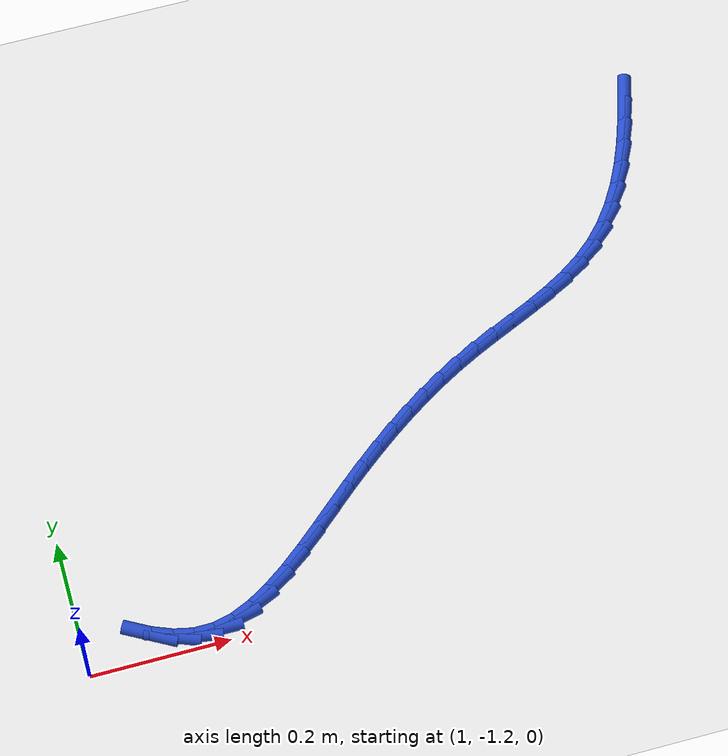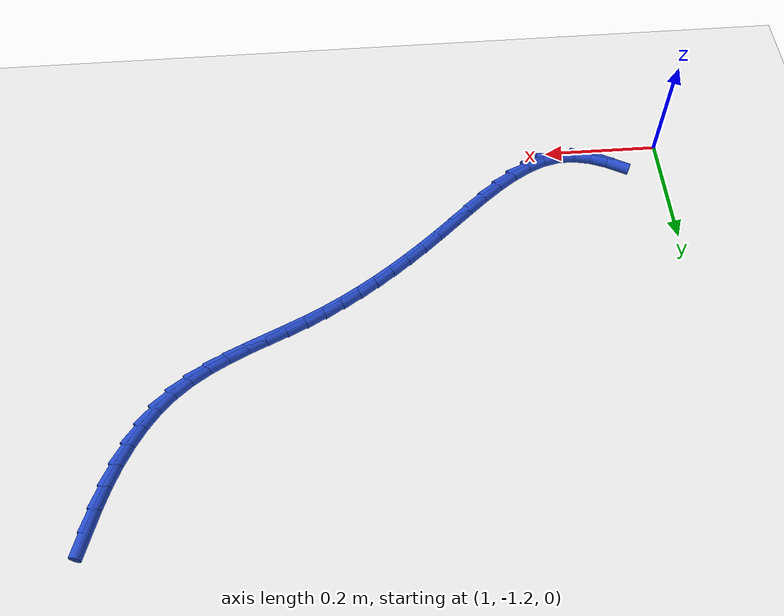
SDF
<sdf version="1.6">
 <world name="default">
  <model name="ground_plane">
   <static>1</static>
   <link name="link">
    <collision name="collision">
     <geometry><plane><normal>0 0 1</normal><size>100 100</size></plane></geometry>
     <surface><friction><ode><mu>100</mu><mu2>50</mu2></ode></friction></surface>
    </collision>
    <visual name="visual">
     <cast_shadows>0</cast_shadows>
     <geometry><plane><normal>0 0 1</normal><size>100 100</size></plane></geometry>
     <material>
      <script><uri>file://media/materials/scripts/gazebo.material</uri><name>Gazebo/WhiteGlow</name></script>
     </material>
    </visual>
   </link>
  </model>
  <model name="line">
   <link name="link_117">
    <pose>1.9673540502915772 -0.5448533219753612 0.01 0 1.57 1.2707819815663457</pose>
    <collision name="collision">
     <geometry><cylinder><radius>0.01</radius><length>0.08</length></cylinder></geometry>
    </collision>
    <visual name="visual">
     <material>
      <script><name>Gazebo/Blue</name><uri>file://media/materials/scripts/gazebo.material</uri></script>
     </material>
     <geometry><cylinder><radius>0.01</radius><length>0.08</length></cylinder></geometry>
    </visual>
   </link>
   <link name="link_118">
    <pose>1.9566328821440122 -0.5795101829973942 0.01 0 1.57 1.2243836448199263</pose>
    <collision name="collision">
     <geometry><cylinder><radius>0.01</radius><length>0.08</length></cylinder></geometry>
    </collision>
    <visual name="visual">
     <material>
      <script><name>Gazebo/Blue</name><uri>file://media/materials/scripts/gazebo.material</uri></script>
     </material>
     <geometry><cylinder><radius>0.01</radius><length>0.08</length></cylinder></geometry>
    </visual>
   </link>
   <link name="link_119">
    <pose>1.9444348681800288 -0.6133026458098839 0.01 0 1.57 1.1676205584317096</pose>
    <collision name="collision">
     <geometry><cylinder><radius>0.01</radius><length>0.08</length></cylinder></geometry>
    </collision>
    <visual name="visual">
     <material>
      <script><name>Gazebo/Blue</name><uri>file://media/materials/scripts/gazebo.material</uri></script>
     </material>
     <geometry><cylinder><radius>0.01</radius><length>0.08</length></cylinder></geometry>
    </visual>
   </link>
   <link name="link_120">
    <pose>1.9305344171575887 -0.6458913717248348 0.01 0 1.57 1.0993035239917834</pose>
    <collision name="collision">
     <geometry><cylinder><radius>0.01</radius><length>0.08</length></cylinder></geometry>
    </collision>
    <visual name="visual">
     <material>
      <script><name>Gazebo/Blue</name><uri>file://media/materials/scripts/gazebo.material</uri></script>
     </material>
     <geometry><cylinder><radius>0.01</radius><length>0.08</length></cylinder></geometry>
    </visual>
   </link>
   <link name="link_121">
    <pose>1.914705937834654 -0.6769370220542514 0.01 0 1.57 1.0182590969712926</pose>
    <collision name="collision">
     <geometry><cylinder><radius>0.01</radius><length>0.08</length></cylinder></geometry>
    </collision>
    <visual name="visual">
     <material>
      <script><name>Gazebo/Blue</name><uri>file://media/materials/scripts/gazebo.material</uri></script>
     </material>
     <geometry><cylinder><radius>0.01</radius><length>0.08</length></cylinder></geometry>
    </visual>
   </link>
   <link name="link_122">
    <pose>1.8967238389691847 -0.7061002581101379 0.01 0 1.57 0.9236186587488563</pose>
    <collision name="collision">
     <geometry><cylinder><radius>0.01</radius><length>0.08</length></cylinder></geometry>
    </collision>
    <visual name="visual">
     <material>
      <script><name>Gazebo/Blue</name><uri>file://media/materials/scripts/gazebo.material</uri></script>
     </material>
     <geometry><cylinder><radius>0.01</radius><length>0.08</length></cylinder></geometry>
    </visual>
   </link>
   <link name="link_123">
    <pose>1.8763625293191437 -0.7330417412044989 0.01 0 1.57 0.8152601228163411</pose>
    <collision name="collision">
     <geometry><cylinder><radius>0.01</radius><length>0.08</length></cylinder></geometry>
    </collision>
    <visual name="visual">
     <material>
      <script><name>Gazebo/Blue</name><uri>file://media/materials/scripts/gazebo.material</uri></script>
     </material>
     <geometry><cylinder><radius>0.01</radius><length>0.08</length></cylinder></geometry>
    </visual>
   </link>
   <link name="link_124">
    <pose>1.8533964176424917 -0.7574221326493388 0.01 0 1.57 0.6959621200831863</pose>
    <collision name="collision">
     <geometry><cylinder><radius>0.01</radius><length>0.08</length></cylinder></geometry>
    </collision>
    <visual name="visual">
     <material>
      <script><name>Gazebo/Blue</name><uri>file://media/materials/scripts/gazebo.material</uri></script>
     </material>
     <geometry><cylinder><radius>0.01</radius><length>0.08</length></cylinder></geometry>
    </visual>
   </link>
   <link name="link_125">
    <pose>1.827636068884223 -0.7789425646608954 0.01 0 1.57 0.5889126320006592</pose>
    <collision name="collision">
     <geometry><cylinder><radius>0.01</radius><length>0.08</length></cylinder></geometry>
    </collision>
    <visual name="visual">
     <material>
      <script><name>Gazebo/Blue</name><uri>file://media/materials/scripts/gazebo.material</uri></script>
     </material>
     <geometry><cylinder><radius>0.01</radius><length>0.08</length></cylinder></geometry>
    </visual>
   </link>
   <link name="link_126">
    <pose>1.7993614007290035 -0.7978295326460035 0.01 0 1.57 0.509112200747806</pose>
    <collision name="collision">
     <geometry><cylinder><radius>0.01</radius><length>0.08</length></cylinder></geometry>
    </collision>
    <visual name="visual">
     <material>
      <script><name>Gazebo/Blue</name><uri>file://media/materials/scripts/gazebo.material</uri></script>
     </material>
     <geometry><cylinder><radius>0.01</radius><length>0.08</length></cylinder></geometry>
    </visual>
   </link>
   <link name="link_127">
    <pose>1.7691801771771736 -0.8146765020361029 0.01 0 1.57 0.4552575044711966</pose>
    <collision name="collision">
     <geometry><cylinder><radius>0.01</radius><length>0.08</length></cylinder></geometry>
    </collision>
    <visual name="visual">
     <material>
      <script><name>Gazebo/Blue</name><uri>file://media/materials/scripts/gazebo.material</uri></script>
     </material>
     <geometry><cylinder><radius>0.01</radius><length>0.08</length></cylinder></geometry>
    </visual>
   </link>
   <link name="link_128">
    <pose>1.7377068699587108 -0.8300844464626447 0.01 0 1.57 0.4254885467728281</pose>
    <collision name="collision">
     <geometry><cylinder><radius>0.01</radius><length>0.08</length></cylinder></geometry>
    </collision>
    <visual name="visual">
     <material>
      <script><name>Gazebo/Blue</name><uri>file://media/materials/scripts/gazebo.material</uri></script>
     </material>
     <geometry><cylinder><radius>0.01</radius><length>0.08</length></cylinder></geometry>
    </visual>
   </link>
   <link name="link_129">
    <pose>1.705555950803594 -0.8446543395570794 0.01 0 1.57 0.41862489967751054</pose>
    <collision name="collision">
     <geometry><cylinder><radius>0.01</radius><length>0.08</length></cylinder></geometry>
    </collision>
    <visual name="visual">
     <material>
      <script><name>Gazebo/Blue</name><uri>file://media/materials/scripts/gazebo.material</uri></script>
     </material>
     <geometry><cylinder><radius>0.01</radius><length>0.08</length></cylinder></geometry>
    </visual>
   </link>
   <link name="link_130">
    <pose>1.6733418914418021 -0.8589871549508585 0.01 0 1.57 0.4345704161032283</pose>
    <collision name="collision">
     <geometry><cylinder><radius>0.01</radius><length>0.08</length></cylinder></geometry>
    </collision>
    <visual name="visual">
     <material>
      <script><name>Gazebo/Blue</name><uri>file://media/materials/scripts/gazebo.material</uri></script>
     </material>
     <geometry><cylinder><radius>0.01</radius><length>0.08</length></cylinder></geometry>
    </visual>
   </link>
   <link name="link_131">
    <pose>1.6416791636033135 -0.8736838662754327 0.01 0 1.57 0.47019823769616265</pose>
    <collision name="collision">
     <geometry><cylinder><radius>0.01</radius><length>0.08</length></cylinder></geometry>
    </collision>
    <visual name="visual">
     <material>
      <script><name>Gazebo/Blue</name><uri>file://media/materials/scripts/gazebo.material</uri></script>
     </material>
     <geometry><cylinder><radius>0.01</radius><length>0.08</length></cylinder></geometry>
    </visual>
   </link>
   <link name="link_132">
    <pose>1.6110488881311193 -0.8892506412537415 0.01 0 1.57 0.5093281407416815</pose>
    <collision name="collision">
     <geometry><cylinder><radius>0.01</radius><length>0.08</length></cylinder></geometry>
    </collision>
    <visual name="visual">
     <material>
      <script><name>Gazebo/Blue</name><uri>file://media/materials/scripts/gazebo.material</uri></script>
     </material>
     <geometry><cylinder><radius>0.01</radius><length>0.08</length></cylinder></geometry>
    </visual>
   </link>
   <link name="link_133">
    <pose>1.5813949370251428 -0.9058116901593635 0.01 0 1.57 0.5470642674423535</pose>
    <collision name="collision">
     <geometry><cylinder><radius>0.01</radius><length>0.08</length></cylinder></geometry>
    </collision>
    <visual name="visual">
     <material>
      <script><name>Gazebo/Blue</name><uri>file://media/materials/scripts/gazebo.material</uri></script>
     </material>
     <geometry><cylinder><radius>0.01</radius><length>0.08</length></cylinder></geometry>
    </visual>
   </link>
   <link name="link_134">
    <pose>1.5525259018307551 -0.9233950455299242 0.01 0 1.57 0.5826791120380118</pose>
    <collision name="collision">
     <geometry><cylinder><radius>0.01</radius><length>0.08</length></cylinder></geometry>
    </collision>
    <visual name="visual">
     <material>
      <script><name>Gazebo/Blue</name><uri>file://media/materials/scripts/gazebo.material</uri></script>
     </material>
     <geometry><cylinder><radius>0.01</radius><length>0.08</length></cylinder></geometry>
    </visual>
   </link>
   <link name="link_135">
    <pose>1.5242503740914846 -0.9420287399017401 0.01 0 1.57 0.6155413042450723</pose>
    <collision name="collision">
     <geometry><cylinder><radius>0.01</radius><length>0.08</length></cylinder></geometry>
    </collision>
    <visual name="visual">
     <material>
      <script><name>Gazebo/Blue</name><uri>file://media/materials/scripts/gazebo.material</uri></script>
     </material>
     <geometry><cylinder><radius>0.01</radius><length>0.08</length></cylinder></geometry>
    </visual>
   </link>
   <link name="link_136">
    <pose>1.496376945350857 -0.9617408058111256 0.01 0 1.57 0.6451513374381218</pose>
    <collision name="collision">
     <geometry><cylinder><radius>0.01</radius><length>0.08</length></cylinder></geometry>
    </collision>
    <visual name="visual">
     <material>
      <script><name>Gazebo/Blue</name><uri>file://media/materials/scripts/gazebo.material</uri></script>
     </material>
     <geometry><cylinder><radius>0.01</radius><length>0.08</length></cylinder></geometry>
    </visual>
   </link>
   <link name="link_137">
    <pose>1.4687142071524015 -0.9825592757943964 0.01 0 1.57 0.6711604797228402</pose>
    <collision name="collision">
     <geometry><cylinder><radius>0.01</radius><length>0.08</length></cylinder></geometry>
    </collision>
    <visual name="visual">
     <material>
      <script><name>Gazebo/Blue</name><uri>file://media/materials/scripts/gazebo.material</uri></script>
     </material>
     <geometry><cylinder><radius>0.01</radius><length>0.08</length></cylinder></geometry>
    </visual>
   </link>
   <link name="link_138">
    <pose>1.441070751039645 -1.0045121823878687 0.01 0 1.57 0.6933729728794831</pose>
    <collision name="collision">
     <geometry><cylinder><radius>0.01</radius><length>0.08</length></cylinder></geometry>
    </collision>
    <visual name="visual">
     <material>
      <script><name>Gazebo/Blue</name><uri>file://media/materials/scripts/gazebo.material</uri></script>
     </material>
     <geometry><cylinder><radius>0.01</radius><length>0.08</length></cylinder></geometry>
    </visual>
   </link>
   <link name="link_139">
    <pose>1.4132551685561148 -1.0276275581278567 0.01 0 1.57 0.7116180858168377</pose>
    <collision name="collision">
     <geometry><cylinder><radius>0.01</radius><length>0.08</length></cylinder></geometry>
    </collision>
    <visual name="visual">
     <material>
      <script><name>Gazebo/Blue</name><uri>file://media/materials/scripts/gazebo.material</uri></script>
     </material>
     <geometry><cylinder><radius>0.01</radius><length>0.08</length></cylinder></geometry>
    </visual>
   </link>
   <link name="link_140">
    <pose>1.3850779314596184 -1.0519260885567898 0.01 0 1.57 0.7195249910704854</pose>
    <collision name="collision">
     <geometry><cylinder><radius>0.01</radius><length>0.08</length></cylinder></geometry>
    </collision>
    <visual name="visual">
     <material>
      <script><name>Gazebo/Blue</name><uri>file://media/materials/scripts/gazebo.material</uri></script>
     </material>
     <geometry><cylinder><radius>0.01</radius><length>0.08</length></cylinder></geometry>
    </visual>
   </link>
   <link name="link_141">
    <pose>1.3564582862980226 -1.077003418451108 0.01 0 1.57 0.7079273162150928</pose>
    <collision name="collision">
     <geometry><cylinder><radius>0.01</radius><length>0.08</length></cylinder></geometry>
    </collision>
    <visual name="visual">
     <material>
      <script><name>Gazebo/Blue</name><uri>file://media/materials/scripts/gazebo.material</uri></script>
     </material>
     <geometry><cylinder><radius>0.01</radius><length>0.08</length></cylinder></geometry>
    </visual>
   </link>
   <link name="link_142">
    <pose>1.3274817987575886 -1.101805295548207 0.01 0 1.57 0.6753730294679459</pose>
    <collision name="collision">
     <geometry><cylinder><radius>0.01</radius><length>0.08</length></cylinder></geometry>
    </collision>
    <visual name="visual">
     <material>
      <script><name>Gazebo/Blue</name><uri>file://media/materials/scripts/gazebo.material</uri></script>
     </material>
     <geometry><cylinder><radius>0.01</radius><length>0.08</length></cylinder></geometry>
    </visual>
   </link>
   <link name="link_143">
    <pose>1.298248078142563 -1.1252225917255418 0.01 0 1.57 0.6186654681522168</pose>
    <collision name="collision">
     <geometry><cylinder><radius>0.01</radius><length>0.08</length></cylinder></geometry>
    </collision>
    <visual name="visual">
     <material>
      <script><name>Gazebo/Blue</name><uri>file://media/materials/scripts/gazebo.material</uri></script>
     </material>
     <geometry><cylinder><radius>0.01</radius><length>0.08</length></cylinder></geometry>
    </visual>
   </link>
   <link name="link_144">
    <pose>1.2688567337571899 -1.1461461788605678 0.01 0 1.57 0.5316634614446969</pose>
    <collision name="collision">
     <geometry><cylinder><radius>0.01</radius><length>0.08</length></cylinder></geometry>
    </collision>
    <visual name="visual">
     <material>
      <script><name>Gazebo/Blue</name><uri>file://media/materials/scripts/gazebo.material</uri></script>
     </material>
     <geometry><cylinder><radius>0.01</radius><length>0.08</length></cylinder></geometry>
    </visual>
   </link>
   <link name="link_145">
    <pose>1.2394073749057137 -1.1634669288307398 0.01 0 1.57 0.4050485518342648</pose>
    <collision name="collision">
     <geometry><cylinder><radius>0.01</radius><length>0.08</length></cylinder></geometry>
    </collision>
    <visual name="visual">
     <material>
      <script><name>Gazebo/Blue</name><uri>file://media/materials/scripts/gazebo.material</uri></script>
     </material>
     <geometry><cylinder><radius>0.01</radius><length>0.08</length></cylinder></geometry>
    </visual>
   </link>
   <link name="link_146">
    <pose>1.2099996108923794 -1.176075713513513 0.01 0 1.57 0.22789734010040744</pose>
    <collision name="collision">
     <geometry><cylinder><radius>0.01</radius><length>0.08</length></cylinder></geometry>
    </collision>
    <visual name="visual">
     <material>
      <script><name>Gazebo/Blue</name><uri>file://media/materials/scripts/gazebo.material</uri></script>
     </material>
     <geometry><cylinder><radius>0.01</radius><length>0.08</length></cylinder></geometry>
    </visual>
   </link>
   <link name="link_147">
    <pose>1.1807330510214322 -1.182863404786343 0.01 0 1.57 0.002307202717953418</pose>
    <collision name="collision">
     <geometry><cylinder><radius>0.01</radius><length>0.08</length></cylinder></geometry>
    </collision>
    <visual name="visual">
     <material>
      <script><name>Gazebo/Blue</name><uri>file://media/materials/scripts/gazebo.material</uri></script>
     </material>
     <geometry><cylinder><radius>0.01</radius><length>0.08</length></cylinder></geometry>
    </visual>
   </link>
   <link name="link_148">
    <pose>1.1516875637918929 -1.1829304187323326 0.01 0 1.57 -0.21249298305875558</pose>
    <collision name="collision">
     <geometry><cylinder><radius>0.01</radius><length>0.08</length></cylinder></geometry>
    </collision>
    <visual name="visual">
     <material>
      <script><name>Gazebo/Blue</name><uri>file://media/materials/scripts/gazebo.material</uri></script>
     </material>
     <geometry><cylinder><radius>0.01</radius><length>0.08</length></cylinder></geometry>
    </visual>
   </link>
   <link name="link_149">
    <pose>1.1228182214121158 -1.1767018559801252 0.01 0 1.57 -0.38254619411339824</pose>
    <collision name="collision">
     <geometry><cylinder><radius>0.01</radius><length>0.08</length></cylinder></geometry>
    </collision>
    <visual name="visual">
     <material>
      <script><name>Gazebo/Blue</name><uri>file://media/materials/scripts/gazebo.material</uri></script>
     </material>
     <geometry><cylinder><radius>0.01</radius><length>0.08</length></cylinder></geometry>
    </visual>
   </link>
   <link name="link_150">
    <pose>1.0940314688496637 -1.1651189843779477 0.01 0 1.57 -0.5069910723511252</pose>
    <collision name="collision">
     <geometry><cylinder><radius>0.01</radius><length>0.08</length></cylinder></geometry>
    </collision>
    <visual name="visual">
     <material>
      <script><name>Gazebo/Blue</name><uri>file://media/materials/scripts/gazebo.material</uri></script>
     </material>
     <geometry><cylinder><radius>0.01</radius><length>0.08</length></cylinder></geometry>
    </visual>
   </link>
  </model>
 </world>
</sdf>
